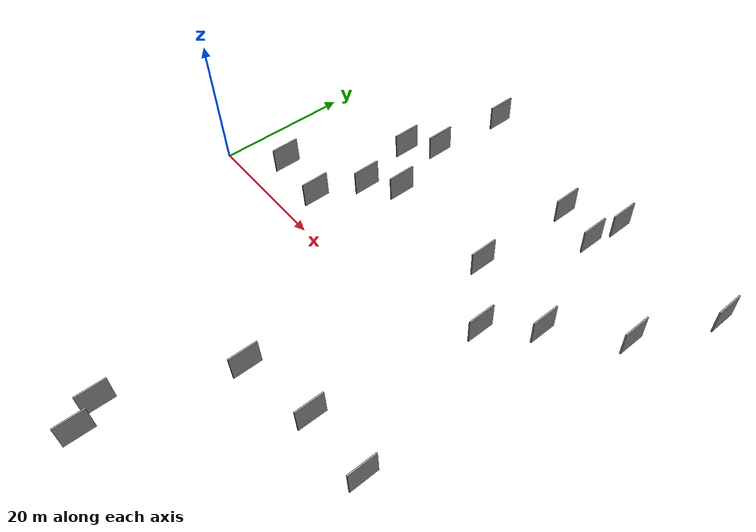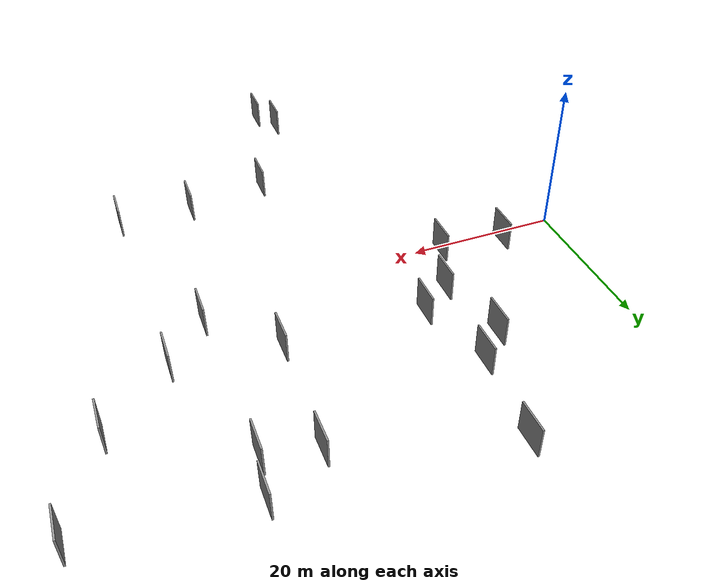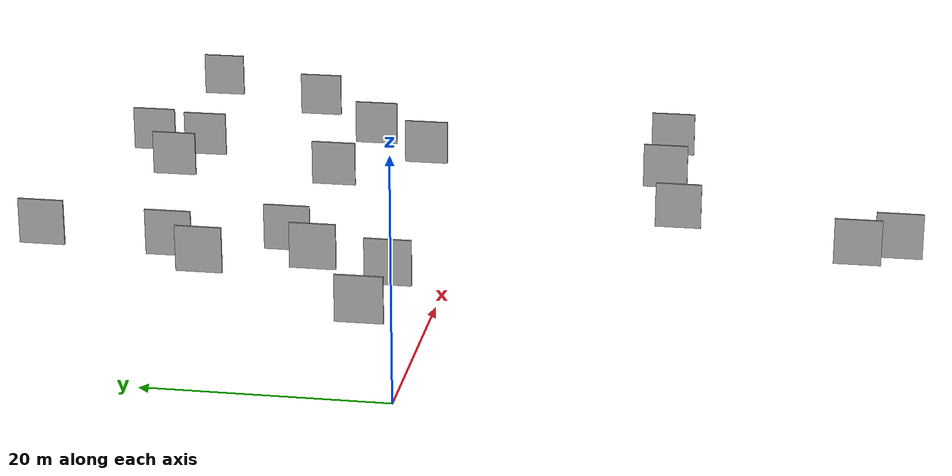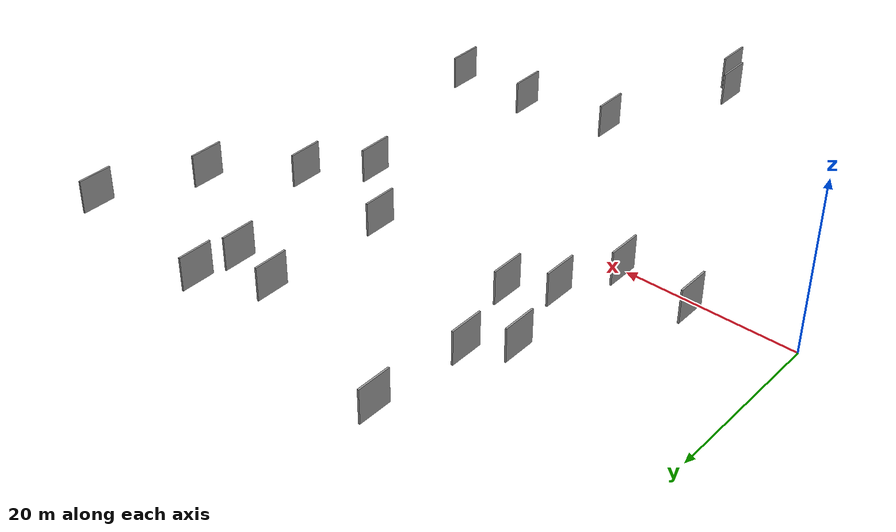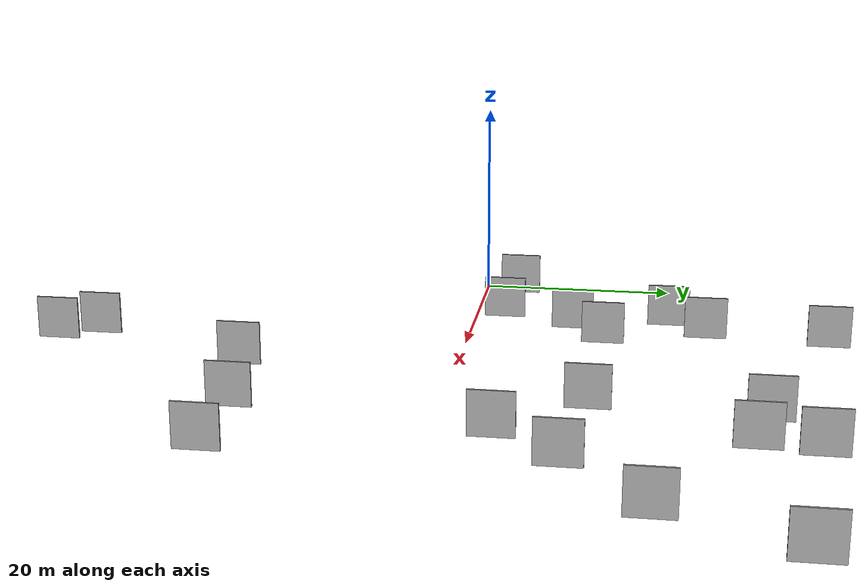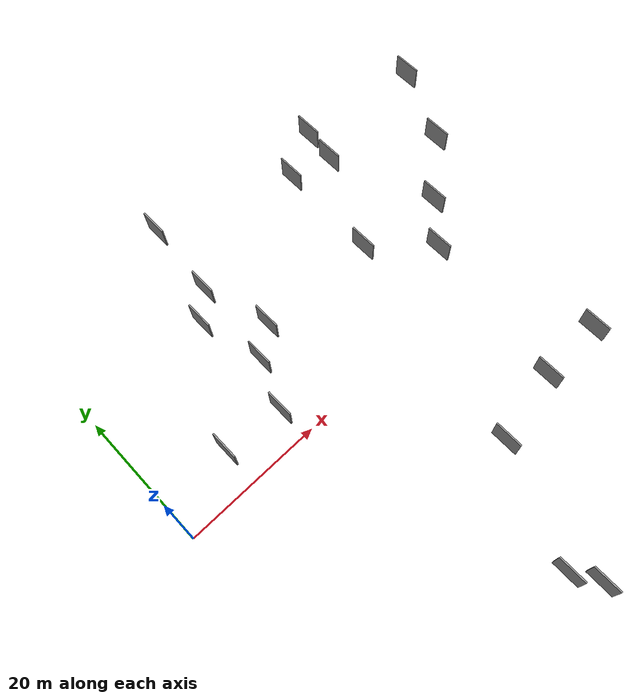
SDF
<sdf version="1.6">
 <world name="default">
  <scene>
   <sky><clouds><speed>12</speed></clouds></sky>
   <ambient>0.4 0.4 0.4 1</ambient>
   <background>0.7 0.7 0.7 1</background>
   <shadows>1</shadows>
  </scene>
  <gravity>0 0 -9.8066</gravity>
  <magnetic_field>6e-06 2.3e-05 -4.2e-05</magnetic_field>
  <physics default="0" name="default_physics" type="ode">
   <ode>
    <solver>
     <type>quick</type>
     <iters>10</iters>
     <sor>1.0</sor>
     <use_dynamic_moi_rescaling>0</use_dynamic_moi_rescaling>
    </solver>
    <constraints>
     <cfm>0</cfm>
     <erp>0.2</erp>
     <contact_max_correcting_vel>100</contact_max_correcting_vel>
     <contact_surface_layer>0.001</contact_surface_layer>
    </constraints>
   </ode>
   <max_step_size>0.004</max_step_size>
   <real_time_factor>1</real_time_factor>
   <real_time_update_rate>250</real_time_update_rate>
  </physics>
  <light name="sun" type="directional">
   <pose>0 0 10 0 0 0</pose>
   <diffuse>0.8 0.8 0.8 1</diffuse>
   <specular>0.2 0.2 0.2 1</specular>
   <attenuation>
    <range>1000</range>
    <constant>0.9</constant>
    <linear>0.01</linear>
    <quadratic>0.001</quadratic>
   </attenuation>
   <direction>-0.5 0.1 -0.9</direction>
  </light>
  <model name="grey_wall_1">
   <static>1</static>
   <pose>63.0688 18.7999 2.5 0.000000 0.000000 1.570796</pose>
   <link name="link">
    <pose>0 0 2.00 0 0 0</pose>
    <collision name="collision"><geometry><box><size>4.00 0.2 4.00</size></box></geometry></collision>
    <visual name="visual">
     <cast_shadows>0</cast_shadows>
     <geometry><box><size>4.00 0.2 4.00</size></box></geometry>
     <material>
      <script>
       <uri>model://grey_wall/materials/scripts</uri>
       <uri>model://grey_wall/materials/textures</uri>
       <name>vrc/grey_wall</name>
      </script>
     </material>
    </visual>
   </link>
  </model>
  <model name="grey_wall_2">
   <static>1</static>
   <pose>43.0125 28.4453 2.5 0.000000 0.000000 1.570796</pose>
   <link name="link">
    <pose>0 0 2.00 0 0 0</pose>
    <collision name="collision"><geometry><box><size>4.00 0.2 4.00</size></box></geometry></collision>
    <visual name="visual">
     <cast_shadows>0</cast_shadows>
     <geometry><box><size>4.00 0.2 4.00</size></box></geometry>
     <material>
      <script>
       <uri>model://grey_wall/materials/scripts</uri>
       <uri>model://grey_wall/materials/textures</uri>
       <name>vrc/grey_wall</name>
      </script>
     </material>
    </visual>
   </link>
  </model>
  <model name="grey_wall_3">
   <static>1</static>
   <pose>9.7882 4.4964 2.5 0.000000 0.000000 1.570796</pose>
   <link name="link">
    <pose>0 0 2.00 0 0 0</pose>
    <collision name="collision"><geometry><box><size>4.00 0.2 4.00</size></box></geometry></collision>
    <visual name="visual">
     <cast_shadows>0</cast_shadows>
     <geometry><box><size>4.00 0.2 4.00</size></box></geometry>
     <material>
      <script>
       <uri>model://grey_wall/materials/scripts</uri>
       <uri>model://grey_wall/materials/textures</uri>
       <name>vrc/grey_wall</name>
      </script>
     </material>
    </visual>
   </link>
  </model>
  <model name="grey_wall_4">
   <static>1</static>
   <pose>23.2778 34.9524 2.5 0.000000 0.000000 1.570796</pose>
   <link name="link">
    <pose>0 0 2.00 0 0 0</pose>
    <collision name="collision"><geometry><box><size>4.00 0.2 4.00</size></box></geometry></collision>
    <visual name="visual">
     <cast_shadows>0</cast_shadows>
     <geometry><box><size>4.00 0.2 4.00</size></box></geometry>
     <material>
      <script>
       <uri>model://grey_wall/materials/scripts</uri>
       <uri>model://grey_wall/materials/textures</uri>
       <name>vrc/grey_wall</name>
      </script>
     </material>
    </visual>
   </link>
  </model>
  <model name="grey_wall_5">
   <static>1</static>
   <pose>31.1167 -37.9669 2.5 0.000000 0.000000 1.570796</pose>
   <link name="link">
    <pose>0 0 2.00 0 0 0</pose>
    <collision name="collision"><geometry><box><size>4.00 0.2 4.00</size></box></geometry></collision>
    <visual name="visual">
     <cast_shadows>0</cast_shadows>
     <geometry><box><size>4.00 0.2 4.00</size></box></geometry>
     <material>
      <script>
       <uri>model://grey_wall/materials/scripts</uri>
       <uri>model://grey_wall/materials/textures</uri>
       <name>vrc/grey_wall</name>
      </script>
     </material>
    </visual>
   </link>
  </model>
  <model name="grey_wall_6">
   <static>1</static>
   <pose>18.7914 19.9269 2.5 0.000000 0.000000 1.570796</pose>
   <link name="link">
    <pose>0 0 2.00 0 0 0</pose>
    <collision name="collision"><geometry><box><size>4.00 0.2 4.00</size></box></geometry></collision>
    <visual name="visual">
     <cast_shadows>0</cast_shadows>
     <geometry><box><size>4.00 0.2 4.00</size></box></geometry>
     <material>
      <script>
       <uri>model://grey_wall/materials/scripts</uri>
       <uri>model://grey_wall/materials/textures</uri>
       <name>vrc/grey_wall</name>
      </script>
     </material>
    </visual>
   </link>
  </model>
  <model name="grey_wall_7">
   <static>1</static>
   <pose>22.2647 23.4619 2.5 0.000000 0.000000 1.570796</pose>
   <link name="link">
    <pose>0 0 2.00 0 0 0</pose>
    <collision name="collision"><geometry><box><size>4.00 0.2 4.00</size></box></geometry></collision>
    <visual name="visual">
     <cast_shadows>0</cast_shadows>
     <geometry><box><size>4.00 0.2 4.00</size></box></geometry>
     <material>
      <script>
       <uri>model://grey_wall/materials/scripts</uri>
       <uri>model://grey_wall/materials/textures</uri>
       <name>vrc/grey_wall</name>
      </script>
     </material>
    </visual>
   </link>
  </model>
  <model name="grey_wall_8">
   <static>1</static>
   <pose>18.2670 3.7332 2.5 0.000000 0.000000 1.570796</pose>
   <link name="link">
    <pose>0 0 2.00 0 0 0</pose>
    <collision name="collision"><geometry><box><size>4.00 0.2 4.00</size></box></geometry></collision>
    <visual name="visual">
     <cast_shadows>0</cast_shadows>
     <geometry><box><size>4.00 0.2 4.00</size></box></geometry>
     <material>
      <script>
       <uri>model://grey_wall/materials/scripts</uri>
       <uri>model://grey_wall/materials/textures</uri>
       <name>vrc/grey_wall</name>
      </script>
     </material>
    </visual>
   </link>
  </model>
  <model name="grey_wall_9">
   <static>1</static>
   <pose>25.0810 13.7698 2.5 0.000000 0.000000 1.570796</pose>
   <link name="link">
    <pose>0 0 2.00 0 0 0</pose>
    <collision name="collision"><geometry><box><size>4.00 0.2 4.00</size></box></geometry></collision>
    <visual name="visual">
     <cast_shadows>0</cast_shadows>
     <geometry><box><size>4.00 0.2 4.00</size></box></geometry>
     <material>
      <script>
       <uri>model://grey_wall/materials/scripts</uri>
       <uri>model://grey_wall/materials/textures</uri>
       <name>vrc/grey_wall</name>
      </script>
     </material>
    </visual>
   </link>
  </model>
  <model name="grey_wall_10">
   <static>1</static>
   <pose>49.8712 5.9351 2.5 0.000000 0.000000 1.570796</pose>
   <link name="link">
    <pose>0 0 2.00 0 0 0</pose>
    <collision name="collision"><geometry><box><size>4.00 0.2 4.00</size></box></geometry></collision>
    <visual name="visual">
     <cast_shadows>0</cast_shadows>
     <geometry><box><size>4.00 0.2 4.00</size></box></geometry>
     <material>
      <script>
       <uri>model://grey_wall/materials/scripts</uri>
       <uri>model://grey_wall/materials/textures</uri>
       <name>vrc/grey_wall</name>
      </script>
     </material>
    </visual>
   </link>
  </model>
  <model name="grey_wall_11">
   <static>1</static>
   <pose>49.8398 32.1812 2.5 0.000000 0.000000 1.570796</pose>
   <link name="link">
    <pose>0 0 2.00 0 0 0</pose>
    <collision name="collision"><geometry><box><size>4.00 0.2 4.00</size></box></geometry></collision>
    <visual name="visual">
     <cast_shadows>0</cast_shadows>
     <geometry><box><size>4.00 0.2 4.00</size></box></geometry>
     <material>
      <script>
       <uri>model://grey_wall/materials/scripts</uri>
       <uri>model://grey_wall/materials/textures</uri>
       <name>vrc/grey_wall</name>
      </script>
     </material>
    </visual>
   </link>
  </model>
  <model name="grey_wall_12">
   <static>1</static>
   <pose>35.8172 -18.8402 2.5 0.000000 0.000000 1.570796</pose>
   <link name="link">
    <pose>0 0 2.00 0 0 0</pose>
    <collision name="collision"><geometry><box><size>4.00 0.2 4.00</size></box></geometry></collision>
    <visual name="visual">
     <cast_shadows>0</cast_shadows>
     <geometry><box><size>4.00 0.2 4.00</size></box></geometry>
     <material>
      <script>
       <uri>model://grey_wall/materials/scripts</uri>
       <uri>model://grey_wall/materials/textures</uri>
       <name>vrc/grey_wall</name>
      </script>
     </material>
    </visual>
   </link>
  </model>
  <model name="grey_wall_13">
   <static>1</static>
   <pose>49.1476 27.0686 2.5 0.000000 0.000000 1.570796</pose>
   <link name="link">
    <pose>0 0 2.00 0 0 0</pose>
    <collision name="collision"><geometry><box><size>4.00 0.2 4.00</size></box></geometry></collision>
    <visual name="visual">
     <cast_shadows>0</cast_shadows>
     <geometry><box><size>4.00 0.2 4.00</size></box></geometry>
     <material>
      <script>
       <uri>model://grey_wall/materials/scripts</uri>
       <uri>model://grey_wall/materials/textures</uri>
       <name>vrc/grey_wall</name>
      </script>
     </material>
    </visual>
   </link>
  </model>
  <model name="grey_wall_14">
   <static>1</static>
   <pose>68.2449 29.9205 2.5 0.000000 0.000000 1.570796</pose>
   <link name="link">
    <pose>0 0 2.00 0 0 0</pose>
    <collision name="collision"><geometry><box><size>4.00 0.2 4.00</size></box></geometry></collision>
    <visual name="visual">
     <cast_shadows>0</cast_shadows>
     <geometry><box><size>4.00 0.2 4.00</size></box></geometry>
     <material>
      <script>
       <uri>model://grey_wall/materials/scripts</uri>
       <uri>model://grey_wall/materials/textures</uri>
       <name>vrc/grey_wall</name>
      </script>
     </material>
    </visual>
   </link>
  </model>
  <model name="grey_wall_15">
   <static>1</static>
   <pose>29.0342 -34.5104 2.5 0.000000 0.000000 1.570796</pose>
   <link name="link">
    <pose>0 0 2.00 0 0 0</pose>
    <collision name="collision"><geometry><box><size>4.00 0.2 4.00</size></box></geometry></collision>
    <visual name="visual">
     <cast_shadows>0</cast_shadows>
     <geometry><box><size>4.00 0.2 4.00</size></box></geometry>
     <material>
      <script>
       <uri>model://grey_wall/materials/scripts</uri>
       <uri>model://grey_wall/materials/textures</uri>
       <name>vrc/grey_wall</name>
      </script>
     </material>
    </visual>
   </link>
  </model>
  <model name="grey_wall_16">
   <static>1</static>
   <pose>42.4405 13.2787 2.5 0.000000 0.000000 1.570796</pose>
   <link name="link">
    <pose>0 0 2.00 0 0 0</pose>
    <collision name="collision"><geometry><box><size>4.00 0.2 4.00</size></box></geometry></collision>
    <visual name="visual">
     <cast_shadows>0</cast_shadows>
     <geometry><box><size>4.00 0.2 4.00</size></box></geometry>
     <material>
      <script>
       <uri>model://grey_wall/materials/scripts</uri>
       <uri>model://grey_wall/materials/textures</uri>
       <name>vrc/grey_wall</name>
      </script>
     </material>
    </visual>
   </link>
  </model>
  <model name="grey_wall_17">
   <static>1</static>
   <pose>21.0090 10.6609 2.5 0.000000 0.000000 1.570796</pose>
   <link name="link">
    <pose>0 0 2.00 0 0 0</pose>
    <collision name="collision"><geometry><box><size>4.00 0.2 4.00</size></box></geometry></collision>
    <visual name="visual">
     <cast_shadows>0</cast_shadows>
     <geometry><box><size>4.00 0.2 4.00</size></box></geometry>
     <material>
      <script>
       <uri>model://grey_wall/materials/scripts</uri>
       <uri>model://grey_wall/materials/textures</uri>
       <name>vrc/grey_wall</name>
      </script>
     </material>
    </visual>
   </link>
  </model>
  <model name="grey_wall_18">
   <static>1</static>
   <pose>54.9546 11.6726 2.5 0.000000 0.000000 1.570796</pose>
   <link name="link">
    <pose>0 0 2.00 0 0 0</pose>
    <collision name="collision"><geometry><box><size>4.00 0.2 4.00</size></box></geometry></collision>
    <visual name="visual">
     <cast_shadows>0</cast_shadows>
     <geometry><box><size>4.00 0.2 4.00</size></box></geometry>
     <material>
      <script>
       <uri>model://grey_wall/materials/scripts</uri>
       <uri>model://grey_wall/materials/textures</uri>
       <name>vrc/grey_wall</name>
      </script>
     </material>
    </visual>
   </link>
  </model>
  <model name="grey_wall_19">
   <static>1</static>
   <pose>46.3152 -16.8208 2.5 0.000000 0.000000 1.570796</pose>
   <link name="link">
    <pose>0 0 2.00 0 0 0</pose>
    <collision name="collision"><geometry><box><size>4.00 0.2 4.00</size></box></geometry></collision>
    <visual name="visual">
     <cast_shadows>0</cast_shadows>
     <geometry><box><size>4.00 0.2 4.00</size></box></geometry>
     <material>
      <script>
       <uri>model://grey_wall/materials/scripts</uri>
       <uri>model://grey_wall/materials/textures</uri>
       <name>vrc/grey_wall</name>
      </script>
     </material>
    </visual>
   </link>
  </model>
  <model name="grey_wall_20">
   <static>1</static>
   <pose>55.8280 -16.7427 2.5 0.000000 0.000000 1.570796</pose>
   <link name="link">
    <pose>0 0 2.00 0 0 0</pose>
    <collision name="collision"><geometry><box><size>4.00 0.2 4.00</size></box></geometry></collision>
    <visual name="visual">
     <cast_shadows>0</cast_shadows>
     <geometry><box><size>4.00 0.2 4.00</size></box></geometry>
     <material>
      <script>
       <uri>model://grey_wall/materials/scripts</uri>
       <uri>model://grey_wall/materials/textures</uri>
       <name>vrc/grey_wall</name>
      </script>
     </material>
    </visual>
   </link>
  </model>
 </world>
</sdf>
